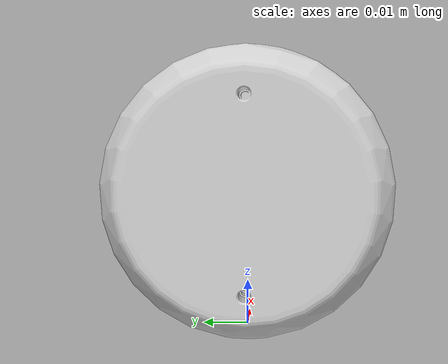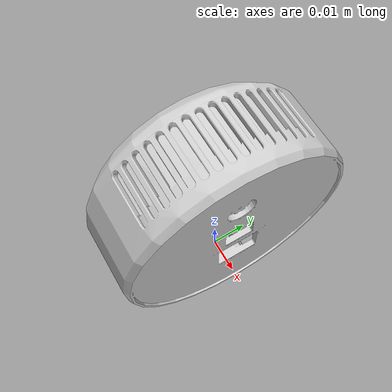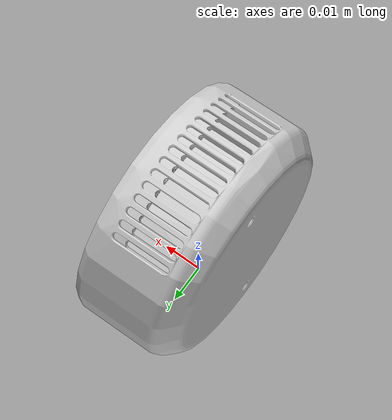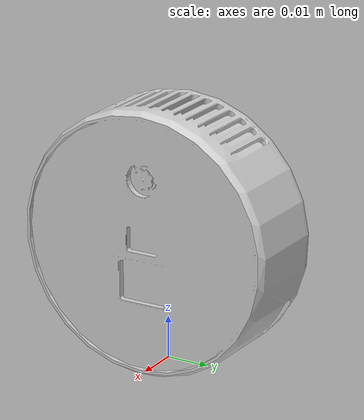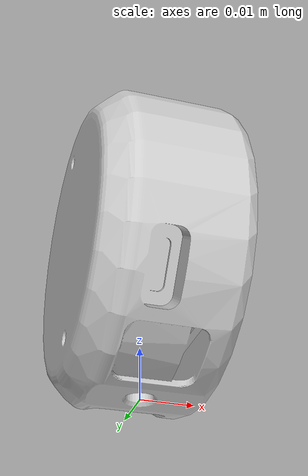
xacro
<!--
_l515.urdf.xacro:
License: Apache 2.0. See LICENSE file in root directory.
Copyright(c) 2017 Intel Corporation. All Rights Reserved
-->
<?xml version="1.0"?>
<robot name="realsense2_camera" xmlns:xacro="http://ros.org/wiki/xacro">
  <xacro:arg name="use_nominal_extrinsics" default="false"/>
  <xacro:arg name="add_plug" default="false" />
  <xacro:arg name="use_mesh" default="true" />
  <xacro:arg name="name" default="camera" />
  <xacro:arg name="topics_ns" default="camera" />
  <xacro:arg name="publish_pointcloud" default="false" />
  <xacro:include filename="$(find realsense2_description)/urdf/_l515.urdf.xacro" />

  <link name="base_link" />
  <xacro:sensor_l515 parent="base_link" use_nominal_extrinsics="$(arg use_nominal_extrinsics)" add_plug="$(arg add_plug)" use_mesh="$(arg use_mesh)" name="$(arg name)" topics_ns="$(arg topics_ns)" publish_pointcloud="$(arg publish_pointcloud)">
    <origin xyz="0 0 0" rpy="0 0 0"/>
  </xacro:sensor_l515>
</robot>

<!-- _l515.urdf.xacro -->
<robot name="sensor_l515" xmlns:xacro="http://ros.org/wiki/xacro">
  <!--File includes-->
  <xacro:include filename="$(find realsense2_description)/urdf/_l515.gazebo.xacro" />
  <xacro:include filename="$(find realsense2_description)/urdf/_materials.urdf.xacro" />
  <xacro:include filename="$(find realsense2_description)/urdf/_usb_plug.urdf.xacro" /> <!-- this specific plug does not apply to L515 -->

  <xacro:macro name="sensor_l515" params="name:=camera topics_ns:=camera parent *origin use_nominal_extrinsics:=false publish_pointcloud:=false add_plug:=true use_mesh:=true">
    <xacro:property name="M_PI" value="3.1415926535897931" />

    <!-- The following values are approximate, and the camera node
     publishing TF values with actual calibrated camera extrinsic values -->
    <xacro:property name="l515_cam_depth_to_infra_offset" value="0.0"/>

    <!-- The following values model the aluminum peripherial case for the
  	L515 camera, with the camera joint represented by the actual
  	peripherial camera tripod mount -->
    <xacro:property name="l515_cam_width" value="0.061"/>
    <xacro:property name="l515_cam_height" value="0.06065"/>
    <xacro:property name="l515_cam_depth" value="0.026"/>
    <xacro:property name="l515_cam_mount_from_glass_offset" value="0.012"/>
    <!-- Zero depth to glass: see datasheet Revision 002, Fig. 2-2 page 11 -->
    <xacro:property name="l515_zero_depth_to_glass" value="0.0045"/>
    <!-- convenience precomputation to avoid clutter-->
    <xacro:property name="l515_depth_x_offset_from_mount" value="${l515_cam_mount_from_glass_offset-l515_zero_depth_to_glass}"/>

    <!-- The following offset is relative the the physical L515 camera peripherial
  	camera tripod mount -->
    <xacro:property name="l515_cam_depth_px" value="${l515_depth_x_offset_from_mount}"/>
    <xacro:property name="l515_cam_depth_py" value="0.0"/>
    <xacro:property name="l515_cam_center"   value="0.03015"/>
    <xacro:property name="l515_cam_center_to_transmitter_pz"  value="0.001"/>
    <xacro:property name="l515_cam_transmitter_to_depth_pz"   value="-0.010"/>
    <xacro:property name="l515_cam_transmitter_to_color_pz"   value="0.014"/>
    <xacro:property name="l515_cam_depth_pz" value="${l515_cam_center+l515_cam_center_to_transmitter_pz+l515_cam_transmitter_to_depth_pz}"/>
    <xacro:property name="l515_cam_center_to_depth_pz" value="${l515_cam_center_to_transmitter_pz+l515_cam_transmitter_to_depth_pz}"/>
    <xacro:property name="abs_mount_from_center"   value="0.020"/>

    <!-- IMU position (p) and rotation (r) offsets from the camera color frame -->
    <!-- These values are approximate and depend on the actual calibrated camera extrinsic values -->
    <xacro:property name="l515_cam_color_to_imu_px" value="-0.00410137791186571"/>
    <xacro:property name="l515_cam_color_to_imu_py" value="-0.0129784867167473"/>
    <xacro:property name="l515_cam_color_to_imu_pz" value="0.00256138201802969"/>
    <xacro:property name="l515_cam_color_to_imu_rx" value="-0.006161012"/>
    <xacro:property name="l515_cam_color_to_imu_ry" value="0.020193459"/>
    <xacro:property name="l515_cam_color_to_imu_rz" value="0.016301375"/>

    <!-- camera body, with origin at bottom screw mount -->
    <joint name="${name}_joint" type="fixed">
      <xacro:insert_block name="origin" />
      <parent link="${parent}"/>
      <child link="${name}_bottom_screw_frame" />
    </joint>
    <link name="${name}_bottom_screw_frame"/>

    <joint name="${name}_link_joint" type="fixed">
      <origin xyz="${l515_cam_depth_px} ${l515_cam_depth_py} ${l515_cam_depth_pz}" rpy="0 0 0"/>
      <parent link="${name}_bottom_screw_frame"/>
      <child link="${name}_link" />
    </joint>

    <link name="${name}_link">
      <visual>
        <!-- the mesh origin is in the middle of the front plate -->
        <xacro:if value="${use_mesh}">
          <origin xyz="${l515_zero_depth_to_glass} 0 ${-l515_cam_center_to_depth_pz}" rpy="${M_PI/2} 0 ${M_PI/2}"/>
          <geometry>
              <mesh filename="package://realsense2_description/meshes/l515.dae" />
          </geometry>
        </xacro:if>
        <xacro:unless value="${use_mesh}">
          <origin xyz="${-l515_cam_depth_px+l515_cam_mount_from_glass_offset-l515_cam_depth/2} 0 ${-l515_cam_center_to_depth_pz}" rpy="${M_PI/2} 0 ${M_PI/2}"/>
          <geometry>
            <cylinder radius="${l515_cam_width/2.0}" length="${l515_cam_depth}"/>
          </geometry>
          <material name="aluminum"/>
        </xacro:unless>
      </visual>
      <collision>
        <origin xyz="${-l515_cam_depth_px+l515_cam_mount_from_glass_offset-l515_cam_depth/2} 0 ${-l515_cam_center_to_depth_pz}" rpy="${M_PI/2} 0 ${M_PI/2}"/>
        <geometry>
          <cylinder radius="${l515_cam_width/2.0}" length="${l515_cam_depth}"/>
        </geometry>
      </collision>
      <inertial>
        <!-- The following are not reliable values, and should not be used for modeling -->
        <!-- calculated assuming full cylinder as described here: https://en.wikipedia.org/wiki/List_of_moments_of_inertia -->
        <mass value="0.095" />
        <origin xyz="0 0 0" />
        <inertia ixx="0.000044" ixy="0.0" ixz="0.0" iyy="0.000027" iyz="0.0" izz="0.000027" />
      </inertial>
    </link>

    <joint name="${name}_lower_mount_joint" type="fixed">
      <origin xyz="${l515_cam_mount_from_glass_offset-l515_cam_depth} 0 ${l515_cam_center-abs_mount_from_center}" rpy="0 0 0" />
      <parent link="${name}_bottom_screw_frame" />
      <child link="${name}_lower_mount" />
    </joint>
    <link name="${name}_lower_mount"/>

    <joint name="${name}_upper_mount_joint" type="fixed">
      <origin xyz="${l515_cam_mount_from_glass_offset-l515_cam_depth} 0 ${l515_cam_center+abs_mount_from_center}" rpy="0 0 0" />
      <parent link="${name}_bottom_screw_frame" />
      <child link="${name}_upper_mount" />
    </joint>
    <link name="${name}_upper_mount"/>

    <!-- Use the nominal extrinsics between camera frames if the calibrated extrinsics aren't being published. e.g. running the device in simulation  -->
    <xacro:if value="${use_nominal_extrinsics}">
      <!-- camera depth joints and links -->
      <joint name="${name}_depth_joint" type="fixed">
        <origin xyz="0 0 0" rpy="0 0 0"/>
        <parent link="${name}_link"/>
        <child link="${name}_depth_frame" />
      </joint>
      <link name="${name}_depth_frame"/>

      <joint name="${name}_depth_optical_joint" type="fixed">
        <origin xyz="0 0 0" rpy="${-M_PI/2} 0 ${-M_PI/2}" />
        <parent link="${name}_depth_frame" />
        <child link="${name}_depth_optical_frame" />
      </joint>
      <link name="${name}_depth_optical_frame"/>

      <!-- camera left IR joints and links -->
      <joint name="${name}_infra_joint" type="fixed">
        <origin xyz="0 ${l515_cam_depth_to_infra_offset} 0" rpy="0 0 0" />
        <parent link="${name}_link" />
        <child link="${name}_infra_frame" />
      </joint>
      <link name="${name}_infra_frame"/>

      <joint name="${name}_infra_optical_joint" type="fixed">
        <origin xyz="0 0 0" rpy="${-M_PI/2} 0 ${-M_PI/2}" />
        <parent link="${name}_infra_frame" />
        <child link="${name}_infra_optical_frame" />
      </joint>
      <link name="${name}_infra_optical_frame"/>

      <!-- camera color joints and links -->
      <joint name="${name}_color_joint" type="fixed">
        <origin xyz="0 0 ${-l515_cam_transmitter_to_depth_pz+l515_cam_transmitter_to_color_pz}" rpy="0 0 0" />
        <parent link="${name}_link" />
        <child link="${name}_color_frame" />
      </joint>
      <link name="${name}_color_frame"/>

      <joint name="${name}_color_optical_joint" type="fixed">
        <origin xyz="0 0 0" rpy="${-M_PI/2} 0 ${-M_PI/2}" />
        <parent link="${name}_color_frame" />
        <child link="${name}_color_optical_frame" />
      </joint>
      <link name="${name}_color_optical_frame"/>

      <!-- camera IMU joints and links -->
      <link name="${name}_gyro_frame" />
      <link name="${name}_gyro_optical_frame" />
      <link name="${name}_accel_frame" />
      <link name="${name}_accel_optical_frame" />

      <joint name="${name}_gyro_joint" type="fixed">
        <origin xyz = "${l515_cam_color_to_imu_px} ${l515_cam_color_to_imu_py} ${l515_cam_color_to_imu_pz}" rpy = "${l515_cam_color_to_imu_rx} ${l515_cam_color_to_imu_ry} ${l515_cam_color_to_imu_rz}" />
        <parent link="${name}_color_frame" />
        <child link="${name}_gyro_frame" />
      </joint>

      <joint name="${name}_gyro_optical_joint" type="fixed">
        <origin xyz = "0 0 0" rpy = "${-M_PI/2} 0 ${-M_PI/2}" />
        <parent link="${name}_gyro_frame" />
        <child link="${name}_gyro_optical_frame" />
      </joint>

      <joint name="${name}_accel_joint" type="fixed">
        <origin xyz = "${l515_cam_color_to_imu_px} ${l515_cam_color_to_imu_py} ${l515_cam_color_to_imu_pz}" rpy = "${l515_cam_color_to_imu_rx} ${l515_cam_color_to_imu_ry} ${l515_cam_color_to_imu_rz}" />
        <parent link="${name}_color_frame" />
        <child link="${name}_accel_frame" />
      </joint>

      <joint name="${name}_accel_optical_joint" type="fixed">
        <origin xyz = "0 0 0" rpy = "${-M_PI/2} 0 ${-M_PI/2}" />
        <parent link="${name}_accel_frame" />
        <child link="${name}_accel_optical_frame" />
      </joint>
    </xacro:if>
    <xacro:if value="${add_plug}">
      <xacro:usb_plug parent="${name}_bottom_screw_frame" name="${name}_usb_plug">
        <origin xyz="${l515_cam_mount_from_glass_offset-0.0148} -0.018 0.018" rpy="${M_PI/4} 0 0 "/>
      </xacro:usb_plug>
    </xacro:if>

    <!-- Realsense Gazebo Plugin -->
    <xacro:gazebo_l515 camera_name="${name}" reference_link="${name}_link" topics_ns="${topics_ns}" depth_optical_frame="${name}_depth_optical_frame" color_optical_frame="${name}_color_optical_frame" infrared_optical_frame="${name}_infra_optical_frame" publish_pointcloud="${publish_pointcloud}"/>

  </xacro:macro>
</robot>
